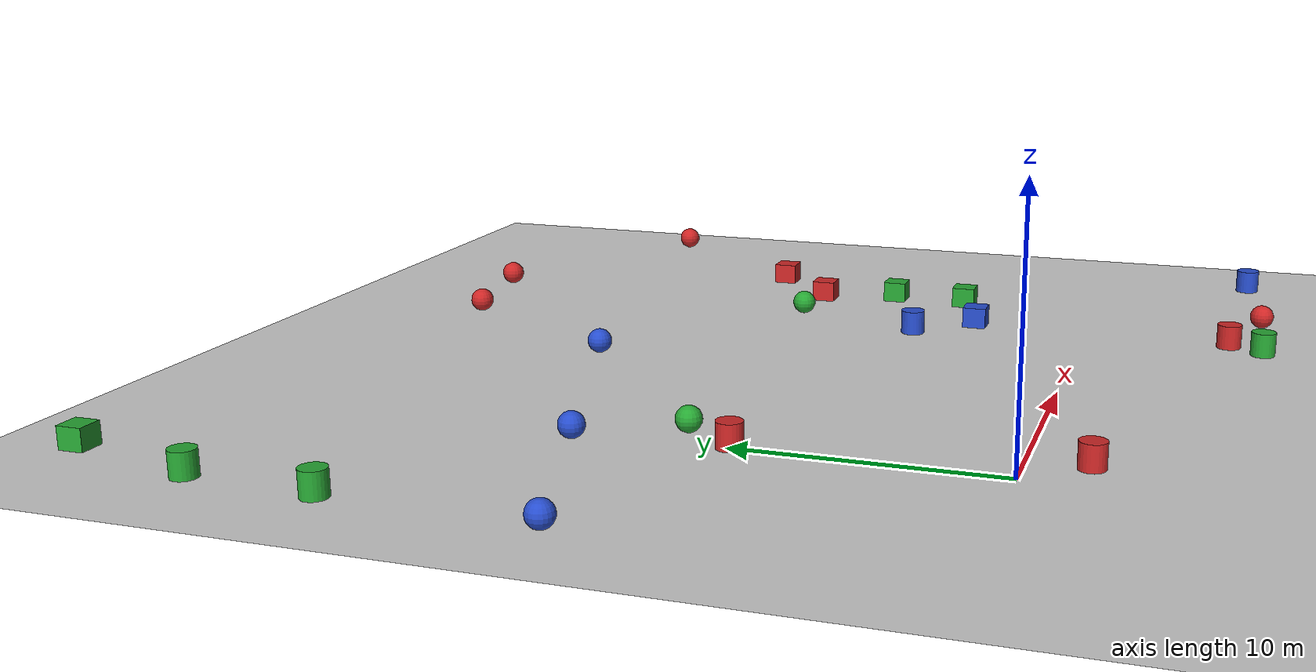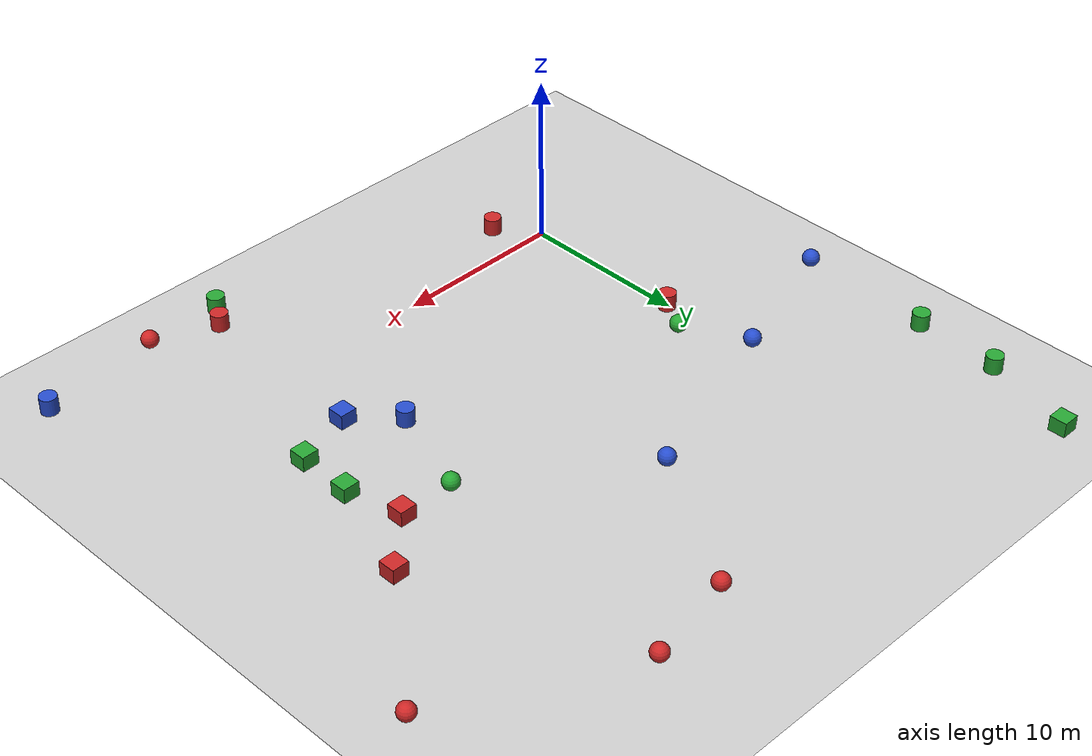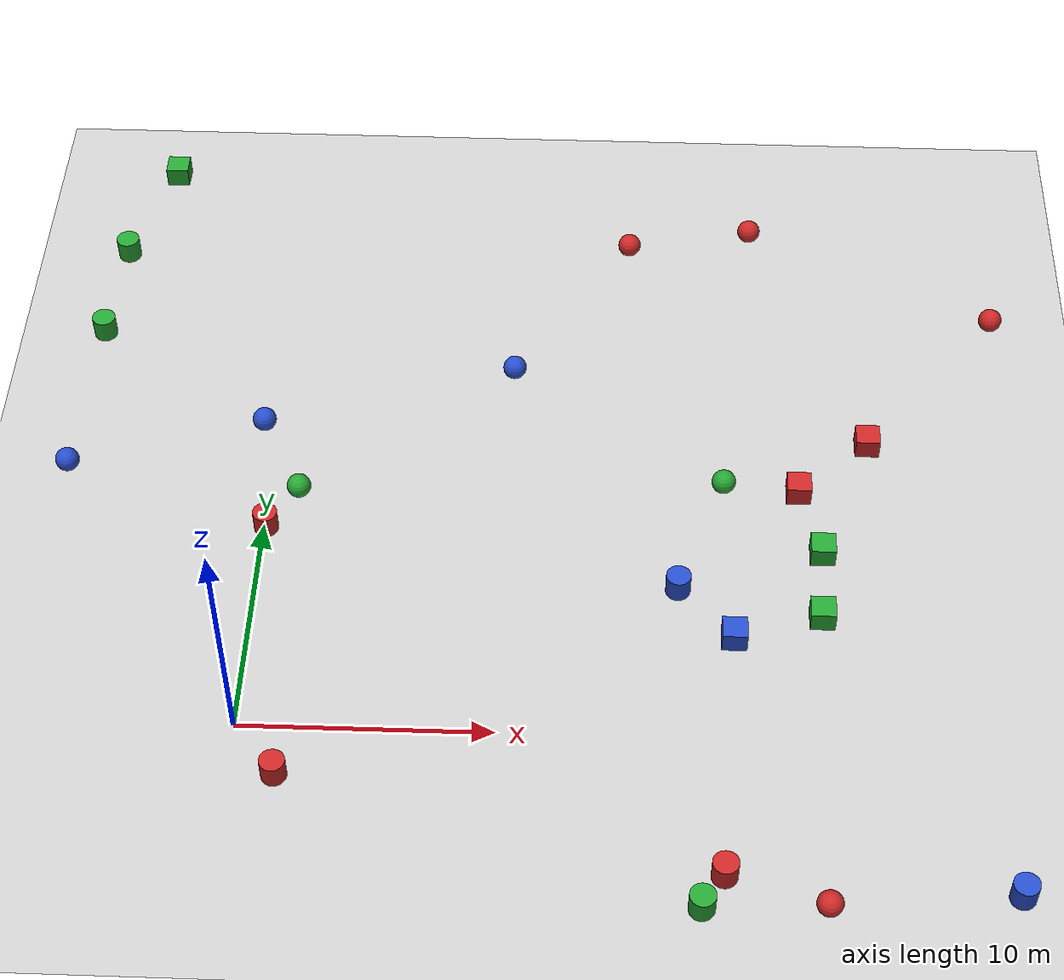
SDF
<sdf version="1.6">
 <world name="default">
  <light name="sun" type="directional">
   <pose>0 0 10 0 -0 0</pose>
   <diffuse>0.8 0.8 0.8 1</diffuse>
   <specular>0.1 0.1 0.1 1</specular>
   <attenuation>
    <range>1000</range>
    <constant>0.9</constant>
    <linear>0.01</linear>
    <quadratic>0.001</quadratic>
   </attenuation>
   <direction>-0.5 0.5 -1</direction>
  </light>
  <model name="ground_plane">
   <static>1</static>
   <link name="link">
    <collision name="collision">
     <geometry><plane><normal>0 0 1</normal><size>100 100</size></plane></geometry>
     <surface><friction><ode><mu>100</mu><mu2>50</mu2></ode></friction></surface>
    </collision>
    <visual name="visual">
     <cast_shadows>0</cast_shadows>
     <geometry><plane><normal>0 0 1</normal><size>100 100</size></plane></geometry>
     <material>
      <script><uri>file://media/materials/scripts/gazebo.material</uri><name>Gazebo/Grey</name></script>
     </material>
    </visual>
   </link>
  </model>
  <model name="unit_box_red_2">
   <pose>24.978644863178026 15.255191403190391 0.329741 0 -0 0</pose>
   <link name="link">
    <inertial>
     <mass>1</mass>
     <inertia>
      <ixx>0.166667</ixx>
      <ixy>0</ixy>
      <ixz>0</ixz>
      <iyy>0.166667</iyy>
      <iyz>0</iyz>
      <izz>0.166667</izz>
     </inertia>
    </inertial>
    <collision name="collision"><geometry><box><size>1 1 0.999999</size></box></geometry></collision>
    <visual name="visual">
     <geometry><box><size>1 1 0.999999</size></box></geometry>
     <material>
      <script><name>Gazebo/Red</name><uri>file://media/materials/scripts/gazebo.material</uri></script>
     </material>
    </visual>
   </link>
  </model>
  <model name="unit_box_red_1">
   <pose>21.99955060471131 12.500366515278365 0.329741 0 -0 0</pose>
   <link name="link">
    <inertial>
     <mass>1</mass>
     <inertia>
      <ixx>0.166667</ixx>
      <ixy>0</ixy>
      <ixz>0</ixz>
      <iyy>0.166667</iyy>
      <iyz>0</iyz>
      <izz>0.166667</izz>
     </inertia>
    </inertial>
    <collision name="collision"><geometry><box><size>1 1 0.999999</size></box></geometry></collision>
    <visual name="visual">
     <geometry><box><size>1 1 0.999999</size></box></geometry>
     <material>
      <script><name>Gazebo/Red</name><uri>file://media/materials/scripts/gazebo.material</uri></script>
     </material>
    </visual>
   </link>
  </model>
  <model name="unit_cylinder_red_3">
   <pose>1.7730608723020111 -2.226600892873755 0.499997 3e-06 4e-06 -0</pose>
   <link name="link">
    <inertial>
     <mass>1</mass>
     <inertia><ixx>0.145833</ixx><ixy>0</ixy><ixz>0</ixz><iyy>0.145833</iyy><iyz>0</iyz><izz>0.125</izz></inertia>
    </inertial>
    <collision name="collision">
     <geometry><cylinder><radius>0.5</radius><length>1</length></cylinder></geometry>
    </collision>
    <visual name="visual">
     <geometry><cylinder><radius>0.5</radius><length>1</length></cylinder></geometry>
     <material>
      <script><name>Gazebo/Red</name><uri>file://media/materials/scripts/gazebo.material</uri></script>
     </material>
    </visual>
   </link>
  </model>
  <model name="unit_cylinder_red_2">
   <pose>18.645890366284824 -6.042554099547902 0.499997 3e-06 4e-06 -0</pose>
   <link name="link">
    <inertial>
     <mass>1</mass>
     <inertia><ixx>0.145833</ixx><ixy>0</ixy><ixz>0</ixz><iyy>0.145833</iyy><iyz>0</iyz><izz>0.125</izz></inertia>
    </inertial>
    <collision name="collision">
     <geometry><cylinder><radius>0.5</radius><length>1</length></cylinder></geometry>
    </collision>
    <visual name="visual">
     <geometry><cylinder><radius>0.5</radius><length>1</length></cylinder></geometry>
     <material>
      <script><name>Gazebo/Red</name><uri>file://media/materials/scripts/gazebo.material</uri></script>
     </material>
    </visual>
   </link>
  </model>
  <model name="unit_cylinder_red_1">
   <pose>0.10340393011348681 9.894298292861905 0.499997 3e-06 4e-06 -0</pose>
   <link name="link">
    <inertial>
     <mass>1</mass>
     <inertia><ixx>0.145833</ixx><ixy>0</ixy><ixz>0</ixz><iyy>0.145833</iyy><iyz>0</iyz><izz>0.125</izz></inertia>
    </inertial>
    <collision name="collision">
     <geometry><cylinder><radius>0.5</radius><length>1</length></cylinder></geometry>
    </collision>
    <visual name="visual">
     <geometry><cylinder><radius>0.5</radius><length>1</length></cylinder></geometry>
     <material>
      <script><name>Gazebo/Red</name><uri>file://media/materials/scripts/gazebo.material</uri></script>
     </material>
    </visual>
   </link>
  </model>
  <model name="unit_sphere_red_4">
   <pose>14.816019423135927 26.888509754579957 0.5 0 -0 0</pose>
   <link name="link">
    <inertial>
     <mass>1</mass>
     <inertia><ixx>0.1</ixx><ixy>0</ixy><ixz>0</ixz><iyy>0.1</iyy><iyz>0</iyz><izz>0.1</izz></inertia>
    </inertial>
    <collision name="collision"><geometry><sphere><radius>0.5</radius></sphere></geometry></collision>
    <visual name="visual">
     <geometry><sphere><radius>0.5</radius></sphere></geometry>
     <material>
      <script><name>Gazebo/Red</name><uri>file://media/materials/scripts/gazebo.material</uri></script>
     </material>
    </visual>
   </link>
  </model>
  <model name="unit_sphere_red_3">
   <pose>30.80164664427177 22.588965270845357 0.5 0 -0 0</pose>
   <link name="link">
    <inertial>
     <mass>1</mass>
     <inertia><ixx>0.1</ixx><ixy>0</ixy><ixz>0</ixz><iyy>0.1</iyy><iyz>0</iyz><izz>0.1</izz></inertia>
    </inertial>
    <collision name="collision"><geometry><sphere><radius>0.5</radius></sphere></geometry></collision>
    <visual name="visual">
     <geometry><sphere><radius>0.5</radius></sphere></geometry>
     <material>
      <script><name>Gazebo/Red</name><uri>file://media/materials/scripts/gazebo.material</uri></script>
     </material>
    </visual>
   </link>
  </model>
  <model name="unit_sphere_red_2">
   <pose>22.381366184451103 -7.309846677329243 0.5 0 -0 0</pose>
   <link name="link">
    <inertial>
     <mass>1</mass>
     <inertia><ixx>0.1</ixx><ixy>0</ixy><ixz>0</ixz><iyy>0.1</iyy><iyz>0</iyz><izz>0.1</izz></inertia>
    </inertial>
    <collision name="collision"><geometry><sphere><radius>0.5</radius></sphere></geometry></collision>
    <visual name="visual">
     <geometry><sphere><radius>0.5</radius></sphere></geometry>
     <material>
      <script><name>Gazebo/Red</name><uri>file://media/materials/scripts/gazebo.material</uri></script>
     </material>
    </visual>
   </link>
  </model>
  <model name="unit_sphere_red_1">
   <pose>20.25942667312812 27.997232119134118 0.5 0 -0 0</pose>
   <link name="link">
    <inertial>
     <mass>1</mass>
     <inertia><ixx>0.1</ixx><ixy>0</ixy><ixz>0</ixz><iyy>0.1</iyy><iyz>0</iyz><izz>0.1</izz></inertia>
    </inertial>
    <collision name="collision"><geometry><sphere><radius>0.5</radius></sphere></geometry></collision>
    <visual name="visual">
     <geometry><sphere><radius>0.5</radius></sphere></geometry>
     <material>
      <script><name>Gazebo/Red</name><uri>file://media/materials/scripts/gazebo.material</uri></script>
     </material>
    </visual>
   </link>
  </model>
  <model name="unit_box_green_3">
   <pose>22.853440294627646 9.24969489776494 0.329741 0 -0 0</pose>
   <link name="link">
    <inertial>
     <mass>1</mass>
     <inertia>
      <ixx>0.166667</ixx>
      <ixy>0</ixy>
      <ixz>0</ixz>
      <iyy>0.166667</iyy>
      <iyz>0</iyz>
      <izz>0.166667</izz>
     </inertia>
    </inertial>
    <collision name="collision"><geometry><box><size>1 1 0.999999</size></box></geometry></collision>
    <visual name="visual">
     <geometry><box><size>1 1 0.999999</size></box></geometry>
     <material>
      <script><name>Gazebo/Green</name><uri>file://media/materials/scripts/gazebo.material</uri></script>
     </material>
    </visual>
   </link>
  </model>
  <model name="unit_box_green_2">
   <pose>22.71020180270783 5.961648960761675 0.329741 0 -0 0</pose>
   <link name="link">
    <inertial>
     <mass>1</mass>
     <inertia>
      <ixx>0.166667</ixx>
      <ixy>0</ixy>
      <ixz>0</ixz>
      <iyy>0.166667</iyy>
      <iyz>0</iyz>
      <izz>0.166667</izz>
     </inertia>
    </inertial>
    <collision name="collision"><geometry><box><size>1 1 0.999999</size></box></geometry></collision>
    <visual name="visual">
     <geometry><box><size>1 1 0.999999</size></box></geometry>
     <material>
      <script><name>Gazebo/Green</name><uri>file://media/materials/scripts/gazebo.material</uri></script>
     </material>
    </visual>
   </link>
  </model>
  <model name="unit_box_green_1">
   <pose>-6.465089497554173 31.370459461741696 0.329741 0 -0 0</pose>
   <link name="link">
    <inertial>
     <mass>1</mass>
     <inertia>
      <ixx>0.166667</ixx>
      <ixy>0</ixy>
      <ixz>0</ixz>
      <iyy>0.166667</iyy>
      <iyz>0</iyz>
      <izz>0.166667</izz>
     </inertia>
    </inertial>
    <collision name="collision"><geometry><box><size>1 1 0.999999</size></box></geometry></collision>
    <visual name="visual">
     <geometry><box><size>1 1 0.999999</size></box></geometry>
     <material>
      <script><name>Gazebo/Green</name><uri>file://media/materials/scripts/gazebo.material</uri></script>
     </material>
    </visual>
   </link>
  </model>
  <model name="unit_cylinder_green_3">
   <pose>17.80113695525793 -7.422818700033877 0.499997 3e-06 4e-06 -0</pose>
   <link name="link">
    <inertial>
     <mass>1</mass>
     <inertia><ixx>0.145833</ixx><ixy>0</ixy><ixz>0</ixz><iyy>0.145833</iyy><iyz>0</iyz><izz>0.125</izz></inertia>
    </inertial>
    <collision name="collision">
     <geometry><cylinder><radius>0.5</radius><length>1</length></cylinder></geometry>
    </collision>
    <visual name="visual">
     <geometry><cylinder><radius>0.5</radius><length>1</length></cylinder></geometry>
     <material>
      <script><name>Gazebo/Green</name><uri>file://media/materials/scripts/gazebo.material</uri></script>
     </material>
    </visual>
   </link>
  </model>
  <model name="unit_cylinder_green_2">
   <pose>-8.280535411841683 20.881243268663155 0.499997 3e-06 4e-06 -0</pose>
   <link name="link">
    <inertial>
     <mass>1</mass>
     <inertia><ixx>0.145833</ixx><ixy>0</ixy><ixz>0</ixz><iyy>0.145833</iyy><iyz>0</iyz><izz>0.125</izz></inertia>
    </inertial>
    <collision name="collision">
     <geometry><cylinder><radius>0.5</radius><length>1</length></cylinder></geometry>
    </collision>
    <visual name="visual">
     <geometry><cylinder><radius>0.5</radius><length>1</length></cylinder></geometry>
     <material>
      <script><name>Gazebo/Green</name><uri>file://media/materials/scripts/gazebo.material</uri></script>
     </material>
    </visual>
   </link>
  </model>
  <model name="unit_cylinder_green_1">
   <pose>-7.993336181193697 25.953518580418653 0.499997 3e-06 4e-06 -0</pose>
   <link name="link">
    <inertial>
     <mass>1</mass>
     <inertia><ixx>0.145833</ixx><ixy>0</ixy><ixz>0</ixz><iyy>0.145833</iyy><iyz>0</iyz><izz>0.125</izz></inertia>
    </inertial>
    <collision name="collision">
     <geometry><cylinder><radius>0.5</radius><length>1</length></cylinder></geometry>
    </collision>
    <visual name="visual">
     <geometry><cylinder><radius>0.5</radius><length>1</length></cylinder></geometry>
     <material>
      <script><name>Gazebo/Green</name><uri>file://media/materials/scripts/gazebo.material</uri></script>
     </material>
    </visual>
   </link>
  </model>
  <model name="unit_sphere_green_2">
   <pose>1.2742848324765053 11.806523737884884 0.5 0 -0 0</pose>
   <link name="link">
    <inertial>
     <mass>1</mass>
     <inertia><ixx>0.1</ixx><ixy>0</ixy><ixz>0</ixz><iyy>0.1</iyy><iyz>0</iyz><izz>0.1</izz></inertia>
    </inertial>
    <collision name="collision"><geometry><sphere><radius>0.5</radius></sphere></geometry></collision>
    <visual name="visual">
     <geometry><sphere><radius>0.5</radius></sphere></geometry>
     <material>
      <script><name>Gazebo/Green</name><uri>file://media/materials/scripts/gazebo.material</uri></script>
     </material>
    </visual>
   </link>
  </model>
  <model name="unit_sphere_green_1">
   <pose>18.88578043961339 12.654484136875922 0.5 0 -0 0</pose>
   <link name="link">
    <inertial>
     <mass>1</mass>
     <inertia><ixx>0.1</ixx><ixy>0</ixy><ixz>0</ixz><iyy>0.1</iyy><iyz>0</iyz><izz>0.1</izz></inertia>
    </inertial>
    <collision name="collision"><geometry><sphere><radius>0.5</radius></sphere></geometry></collision>
    <visual name="visual">
     <geometry><sphere><radius>0.5</radius></sphere></geometry>
     <material>
      <script><name>Gazebo/Green</name><uri>file://media/materials/scripts/gazebo.material</uri></script>
     </material>
    </visual>
   </link>
  </model>
  <model name="unit_box_blue_1">
   <pose>19.19545661884562 4.8139189645398694 0.329741 0 -0 0</pose>
   <link name="link">
    <inertial>
     <mass>1</mass>
     <inertia>
      <ixx>0.166667</ixx>
      <ixy>0</ixy>
      <ixz>0</ixz>
      <iyy>0.166667</iyy>
      <iyz>0</iyz>
      <izz>0.166667</izz>
     </inertia>
    </inertial>
    <collision name="collision"><geometry><box><size>1 1 0.999999</size></box></geometry></collision>
    <visual name="visual">
     <geometry><box><size>1 1 0.999999</size></box></geometry>
     <material>
      <script><name>Gazebo/Blue</name><uri>file://media/materials/scripts/gazebo.material</uri></script>
     </material>
    </visual>
   </link>
  </model>
  <model name="unit_cylinder_blue_2">
   <pose>16.982865483767394 7.180958004199788 0.499997 3e-06 4e-06 -0</pose>
   <link name="link">
    <inertial>
     <mass>1</mass>
     <inertia><ixx>0.145833</ixx><ixy>0</ixy><ixz>0</ixz><iyy>0.145833</iyy><iyz>0</iyz><izz>0.125</izz></inertia>
    </inertial>
    <collision name="collision">
     <geometry><cylinder><radius>0.5</radius><length>1</length></cylinder></geometry>
    </collision>
    <visual name="visual">
     <geometry><cylinder><radius>0.5</radius><length>1</length></cylinder></geometry>
     <material>
      <script><name>Gazebo/Blue</name><uri>file://media/materials/scripts/gazebo.material</uri></script>
     </material>
    </visual>
   </link>
  </model>
  <model name="unit_cylinder_blue_1">
   <pose>29.395622394468383 -6.551112282963588 0.499997 3e-06 4e-06 -0</pose>
   <link name="link">
    <inertial>
     <mass>1</mass>
     <inertia><ixx>0.145833</ixx><ixy>0</ixy><ixz>0</ixz><iyy>0.145833</iyy><iyz>0</iyz><izz>0.125</izz></inertia>
    </inertial>
    <collision name="collision">
     <geometry><cylinder><radius>0.5</radius><length>1</length></cylinder></geometry>
    </collision>
    <visual name="visual">
     <geometry><cylinder><radius>0.5</radius><length>1</length></cylinder></geometry>
     <material>
      <script><name>Gazebo/Blue</name><uri>file://media/materials/scripts/gazebo.material</uri></script>
     </material>
    </visual>
   </link>
  </model>
  <model name="unit_sphere_blue_3">
   <pose>9.93312327134123 18.940847264788637 0.5 0 -0 0</pose>
   <link name="link">
    <inertial>
     <mass>1</mass>
     <inertia><ixx>0.1</ixx><ixy>0</ixy><ixz>0</ixz><iyy>0.1</iyy><iyz>0</iyz><izz>0.1</izz></inertia>
    </inertial>
    <collision name="collision"><geometry><sphere><radius>0.5</radius></sphere></geometry></collision>
    <visual name="visual">
     <geometry><sphere><radius>0.5</radius></sphere></geometry>
     <material>
      <script><name>Gazebo/Blue</name><uri>file://media/materials/scripts/gazebo.material</uri></script>
     </material>
    </visual>
   </link>
  </model>
  <model name="unit_sphere_blue_2">
   <pose>-0.5756693447077446 15.498630852790942 0.5 0 -0 0</pose>
   <link name="link">
    <inertial>
     <mass>1</mass>
     <inertia><ixx>0.1</ixx><ixy>0</ixy><ixz>0</ixz><iyy>0.1</iyy><iyz>0</iyz><izz>0.1</izz></inertia>
    </inertial>
    <collision name="collision"><geometry><sphere><radius>0.5</radius></sphere></geometry></collision>
    <visual name="visual">
     <geometry><sphere><radius>0.5</radius></sphere></geometry>
     <material>
      <script><name>Gazebo/Blue</name><uri>file://media/materials/scripts/gazebo.material</uri></script>
     </material>
    </visual>
   </link>
  </model>
  <model name="unit_sphere_blue_1">
   <pose>-8.575375603813356 12.91922736658082 0.5 0 -0 0</pose>
   <link name="link">
    <inertial>
     <mass>1</mass>
     <inertia><ixx>0.1</ixx><ixy>0</ixy><ixz>0</ixz><iyy>0.1</iyy><iyz>0</iyz><izz>0.1</izz></inertia>
    </inertial>
    <collision name="collision"><geometry><sphere><radius>0.5</radius></sphere></geometry></collision>
    <visual name="visual">
     <geometry><sphere><radius>0.5</radius></sphere></geometry>
     <material>
      <script><name>Gazebo/Blue</name><uri>file://media/materials/scripts/gazebo.material</uri></script>
     </material>
    </visual>
   </link>
  </model>
  <gravity>0 0 -9.8</gravity>
  <magnetic_field>6e-06 2.3e-05 -4.2e-05</magnetic_field>
  <atmosphere type="adiabatic"/>
  <physics default="0" name="default_physics" type="ode">
   <max_step_size>0.001</max_step_size>
   <real_time_factor>1</real_time_factor>
   <real_time_update_rate>1000</real_time_update_rate>
  </physics>
  <scene><ambient>0.4 0.4 0.4 1</ambient><background>0.7 0.7 0.7 1</background><shadows>1</shadows></scene>
  <spherical_coordinates>
   <surface_model>EARTH_WGS84</surface_model>
   <latitude_deg>0</latitude_deg>
   <longitude_deg>0</longitude_deg>
   <elevation>0</elevation>
   <heading_deg>0</heading_deg>
  </spherical_coordinates>
 </world>
</sdf>
